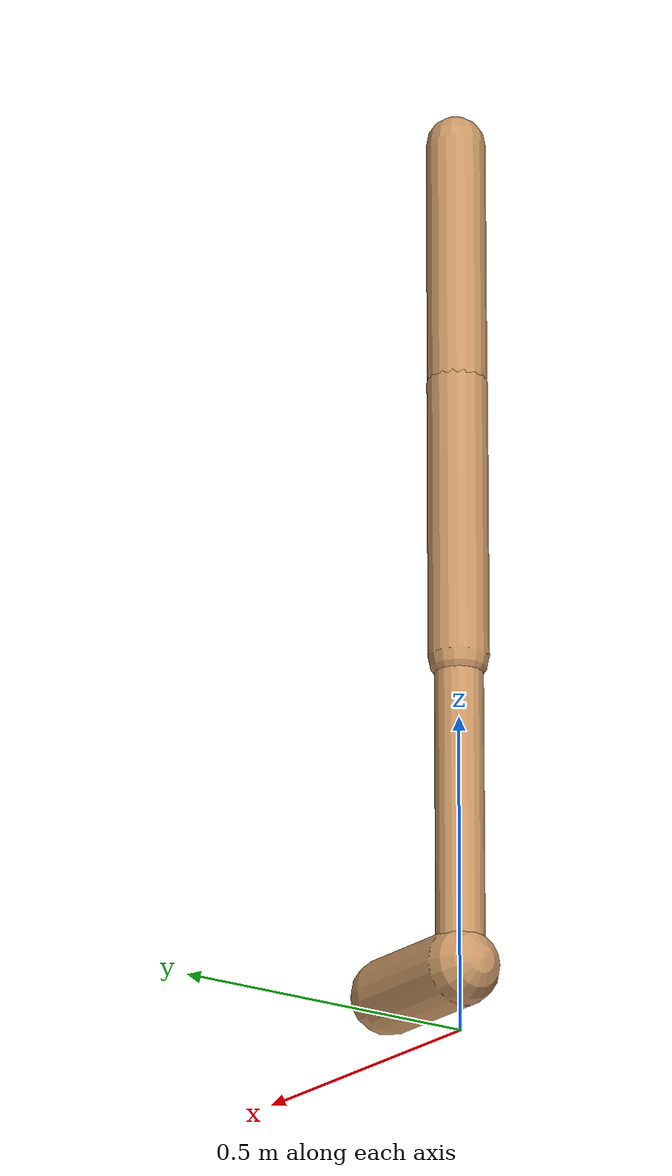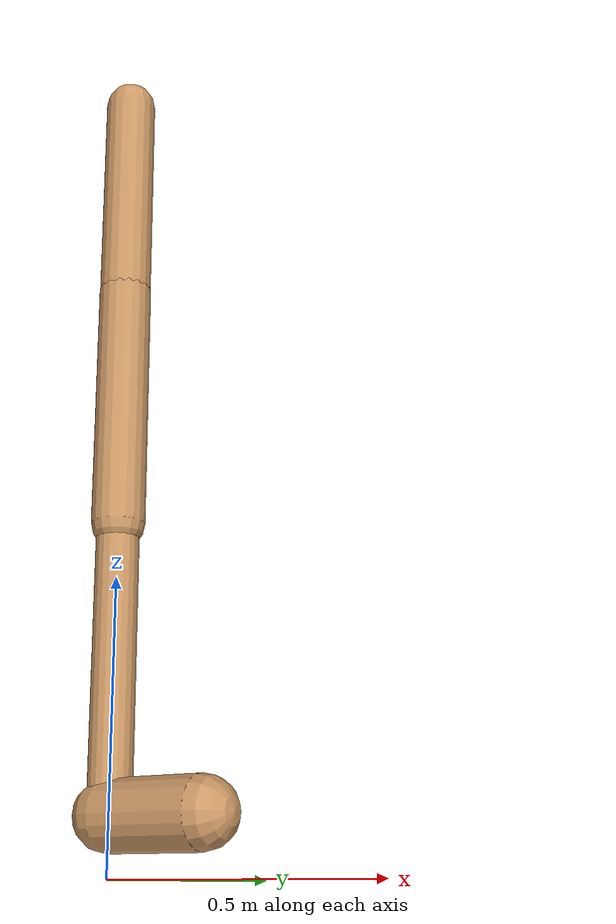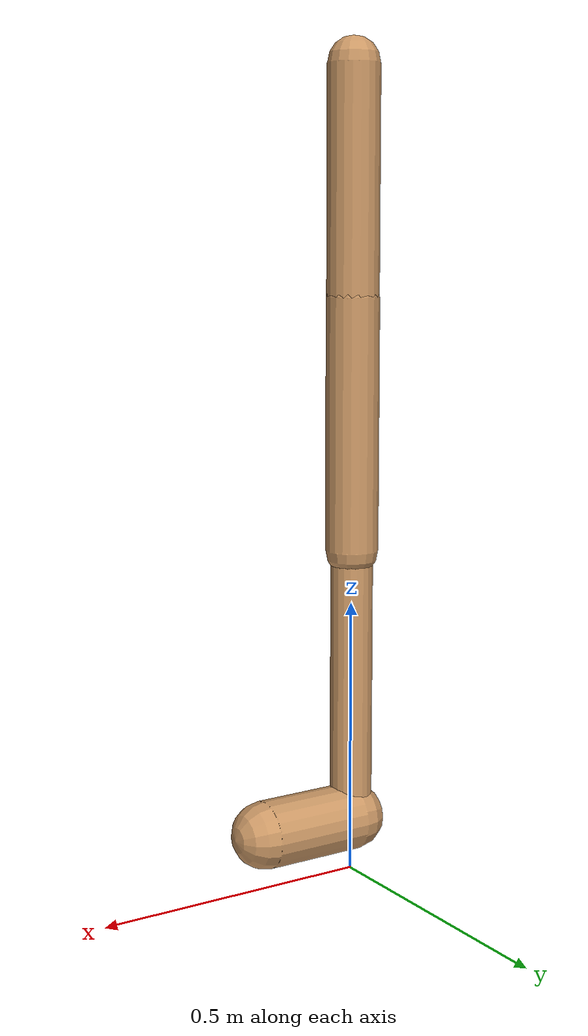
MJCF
<mujoco model="walker2d">
  <compiler angle="degree" coordinate="global" inertiafromgeom="true" />
  <default>
    <joint armature="0.01" damping=".1" limited="true" />
    <geom conaffinity="0" condim="3" contype="1" density="1000" friction="0.8 .1 .1" rgba="0.8 0.6 .4 1" />
  </default>
  <option integrator="RK4" timestep="0.002" />
  <worldbody>

    <body name="torso" pos="0 0 0.004746035693865296">
      <joint armature="0" axis="1 0 0" damping="0" limited="false" name="ignorex" pos="0 0 0" stiffness="0" type="slide" />
      <joint armature="0" axis="0 0 1" damping="0" limited="false" name="ignorez" pos="0 0 0" ref="1.25" stiffness="0" type="slide" />
      <joint armature="0" axis="0 1 0" damping="0" limited="false" name="ignorey" pos="0 0 0" stiffness="0" type="hinge" />
      <geom fromto="0 0 1.45 0 0 1.05" name="torso_geom" size="0.046713595887943535" type="capsule" />
      <body name="thigh">
        <joint axis="0 -1 0" name="thigh_joint" pos="0 0 1.05" range="-150 0" type="hinge" />
        <geom fromto="0.0 0.0 1.05 0.0 0.0 0.5977518778292217" name="thigh_geom" size="0.04745279305421616" type="capsule" />
        <body name="leg" pos="0.0 0.0 -0.0022481221707782995">
          <joint axis="0 -1 0" name="leg_joint" pos="0 0 0.6" range="-150 0" type="hinge" />
          <geom fromto="0.0 0.0 0.6 0.0 0.0 0.09750208647691301" name="leg_geom" size="0.037962234443372926" type="capsule" />
          <body name="foot" pos="0.0 0.0 -0.0024979135230869948">
            <joint axis="0 -1 0" name="foot_joint" pos="0 0 0.1" range="-45 45" type="hinge" />
            <geom fromto="0.0 0.0 0.1 0.1845637202667604 0.0 0.1" name="foot_geom" size="0.06060682985418775" type="capsule" />
          </body>
        </body>
      </body>

      <body name="thigh_left">
        <joint axis="0 -1 0" name="thigh_left_joint" pos="0 0 1.05" range="-150 0" type="hinge" />
        <geom fromto="0.0 0.0 1.05 0.0 0.0 0.5977518778292217" name="thigh_left_geom" rgba=".7 .3 .6 1" size="0.04745279305421616" type="capsule" />
        <body name="leg_left" pos="0.0 0.0 -0.0022481221707782995">
          <joint axis="0 -1 0" name="leg_left_joint" pos="0 0 0.6" range="-150 0" type="hinge" />
          <geom fromto="0.0 0.0 0.6 0.0 0.0 0.09750208647691301" name="leg_left_geom" rgba=".7 .3 .6 1" size="0.037962234443372926" type="capsule" />
          <body name="foot_left" pos="0.0 0.0 -0.0024979135230869948">
            <joint axis="0 -1 0" name="foot_left_joint" pos="0 0 0.1" range="-45 45" type="hinge" />
            <geom fromto="0.0 0.0 0.1 0.1845637202667604 0.0 0.1" name="foot_left_geom" rgba=".7 .3 .6 1" size="0.06060682985418775" type="capsule" />
          </body>
        </body>
      </body>
    </body>
  </worldbody>
  <actuator>

    <motor ctrllimited="true" ctrlrange="-1.0 1.0" gear="100" joint="thigh_joint" />
    <motor ctrllimited="true" ctrlrange="-1.0 1.0" gear="100" joint="leg_joint" />
    <motor ctrllimited="true" ctrlrange="-1.0 1.0" gear="100" joint="foot_joint" />
    <motor ctrllimited="true" ctrlrange="-1.0 1.0" gear="100" joint="thigh_left_joint" />
    <motor ctrllimited="true" ctrlrange="-1.0 1.0" gear="100" joint="leg_left_joint" />
    <motor ctrllimited="true" ctrlrange="-1.0 1.0" gear="100" joint="foot_left_joint" />

  </actuator>
</mujoco>
